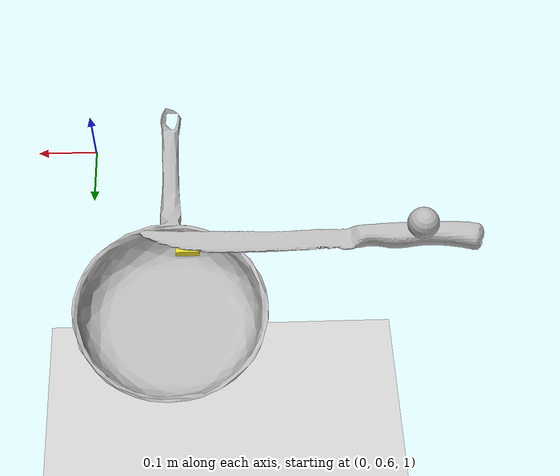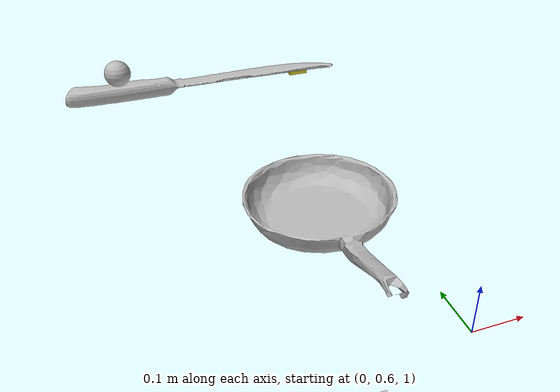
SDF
<sdf version="1.6">
 <world name="scraping">
  <physics type="ode"/>
  <include><uri>model://sun</uri></include>
  <include><uri>model://ground_plane</uri></include>
  <include><uri>model://knife</uri><pose>-0.351127 0.976666 1.331360 0 0 0</pose></include>
  <include>
   <uri>model://gripper</uri>
   <pose>-0.459675 0.976666 1.362517 0 0 0</pose>
   <plugin name="grip" filename="libGripPlugin.so"/>
   <plugin name="scrape" filename="libScrapePlugin.so"/>
  </include>
  <include>
   <uri>model://frying_pan</uri>
   <pose>-0.131965 0.924513 1.048990 3.14 0.10 1.57</pose>
   <static>true</static>
  </include>
  <include>
   <uri>model://butter_box</uri>
   <pose>-0.164298 0.981918 1.325094 0 0 0</pose>
   <plugin name="stick" filename="libStickPlugin.so"/>
  </include>
 </world>
</sdf>

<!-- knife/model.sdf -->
<sdf version='1.6'>
    <model name='knife'>
        <static>false</static>
        <pose>0 0 0 0 0 0</pose>
        <link name='link'>

            <sensor name="tool_contact_sensor" type="contact">
              <always_on>true</always_on>
              <update_rate>30.0</update_rate>
              <contact>
                <collision name="fix">collision</collision>
              </contact>
              <plugin name="tool_bumper" filename="libgazebo_ros_bumper.so">
                <bumperTopicName>tool_contact_sensor_state</bumperTopicName>
                <frameName>world</frameName>
              </plugin>
            </sensor>

            <collision name='collision'>
                <geometry>
                    <mesh>
                        <uri>model://knife/model.dae</uri>
                    </mesh>
                </geometry>
                <surface>
                    <friction>
                        <ode>
                            <mu>0.5</mu>
                            <mu2>0.5</mu2>
                        </ode>
                    </friction>
                </surface>
            </collision>
            <visual name='visual'>
                <geometry>
                    <mesh>
                        <uri>model://knife/model.dae</uri>
                    </mesh>
                </geometry>
            </visual>
        </link>
    </model>
</sdf>

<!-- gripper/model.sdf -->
<sdf version='1.6'>
    <model name='gripper'>
        <static>false</static>
        <allow_auto_disable>false</allow_auto_disable>

        <pose>0 0 0 0 0 0</pose>

        <link name='link'>
            <pose>0 0 0 0 0 0</pose>

            <inertial>
                <mass>0.5</mass>
            </inertial>

            <velocity_decay>
              <linear>0.5</linear>
              <angular>0.5</angular>
            </velocity_decay>

            <gravity>false</gravity>

            <visual name='visual'>
                <geometry>
                    <sphere>
                        <radius>0.02</radius>
                    </sphere>
                </geometry>
            </visual>

        </link>
    </model>
</sdf>

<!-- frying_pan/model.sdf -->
<sdf version='1.6'>
    <model name='frying_pan'>
        <pose>0 0 0 0 0 0</pose>
        <link name='link'>
            <collision name='collision'>
                <geometry>
                    <mesh>
                        <uri>model://frying_pan/model.dae</uri>
                    </mesh>
                </geometry>
            </collision>
            <visual name='visual'>
                <geometry>
                    <mesh>
                        <uri>model://frying_pan/model.dae</uri>
                    </mesh>
                </geometry>

            </visual>
        </link>
    </model>
</sdf>

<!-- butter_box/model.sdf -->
<sdf version='1.6'>
    <model name='butter_box'>
        <static>false</static>
        <pose>0 0 0 0 0 0</pose>
        <link name='link'>
            <pose>0 0 0 0 0 0</pose>
            <inertial>
                <mass>0.01</mass>
                <pose>0 0 0 0 0 0</pose>
                <inertia>
                    <ixx>0.0000004167</ixx>
                    <iyy>0.0000008333</iyy>
                    <izz>0.0000010833</izz>
                    <ixy>0</ixy>
                    <ixz>0</ixz>
                    <iyz>0</iyz>
                </inertia>
            </inertial>
            <collision name='collision'>
                <geometry>
                    <box>
                        <size>0.03 0.02 0.01</size>
                    </box>
                </geometry>
                <surface>
                    <friction>
                        <ode>
                            <mu>0.2</mu>
                            <mu2>0.2</mu2>
                        </ode>
                    </friction>
                </surface>
            </collision>
            <visual name='visual'>
                <geometry>
                    <box>
                        <size>0.03 0.02 0.01</size>
                    </box>
                </geometry>
                <material>
                    <script>
                        <name>Gazebo/Yellow</name>
                        <uri>file://media/materials/scripts/gazebo.material</uri>
                    </script>
                </material>
            </visual>
        </link>
    </model>
</sdf>
